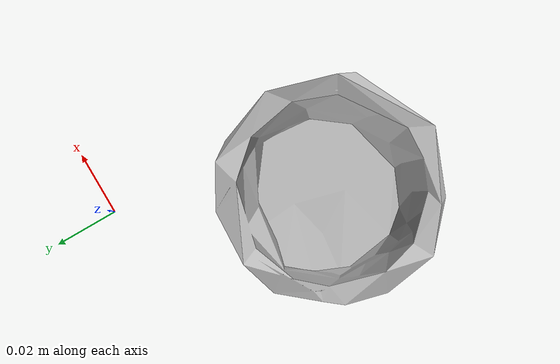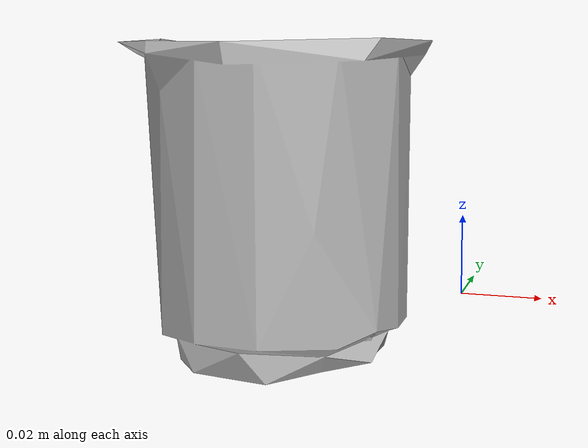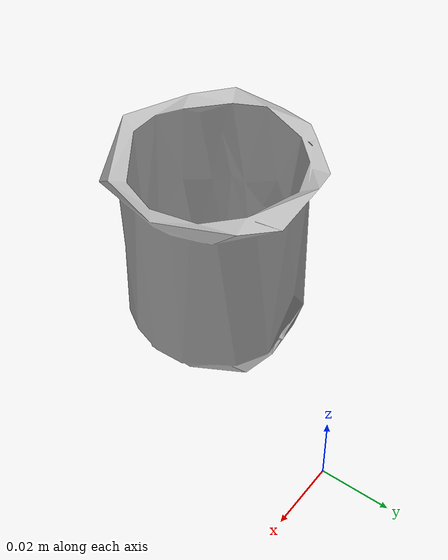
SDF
<?xml version='1.0'?>
<sdf version="1.4">
  <model name="065-b_cups">
    <static>false</static>
    <link name="link">
      <inertial>
        <pose>-0.02781892155257012 -0.05621808025871685 0.03408918137815996 -3.1384869296314046 -0.002767136458032565 0.14019105788451636</pose>
        <mass>0.014971551122537652</mass>
        <inertia>
          <ixx>7.725374351780441e-06</ixx>
          <ixy>2.5143312835212486e-22</ixy>
          <ixz>-7.517082658171495e-23</ixz>
          <iyy>7.723851098334352e-06</iyy>
          <iyz>1.845640085333061e-21</iyz>
          <izz>5.726432522162326e-06</izz>
        </inertia>
      </inertial>
      <collision name="collision">
        <geometry>
          <mesh>
            <!-- Use a downsampled mesh for collisions -->
            <uri>model:///065-b_cups/065-b_cups_250_collision.stl</uri>
	        </mesh>
        </geometry>
        <surface>
      </surface>
      </collision>
      <visual name="visual">
        <geometry>
          <mesh>
            <uri>model:///065-b_cups/textured.obj</uri>
	        </mesh>
        </geometry>
        <material>
          <script>
            <uri>model:///065-b_cups/065-b_cups.material</uri>
            <name>065-b_cups</name>
          </script>
        </material>
      </visual>
    </link>
  </model>
</sdf>
